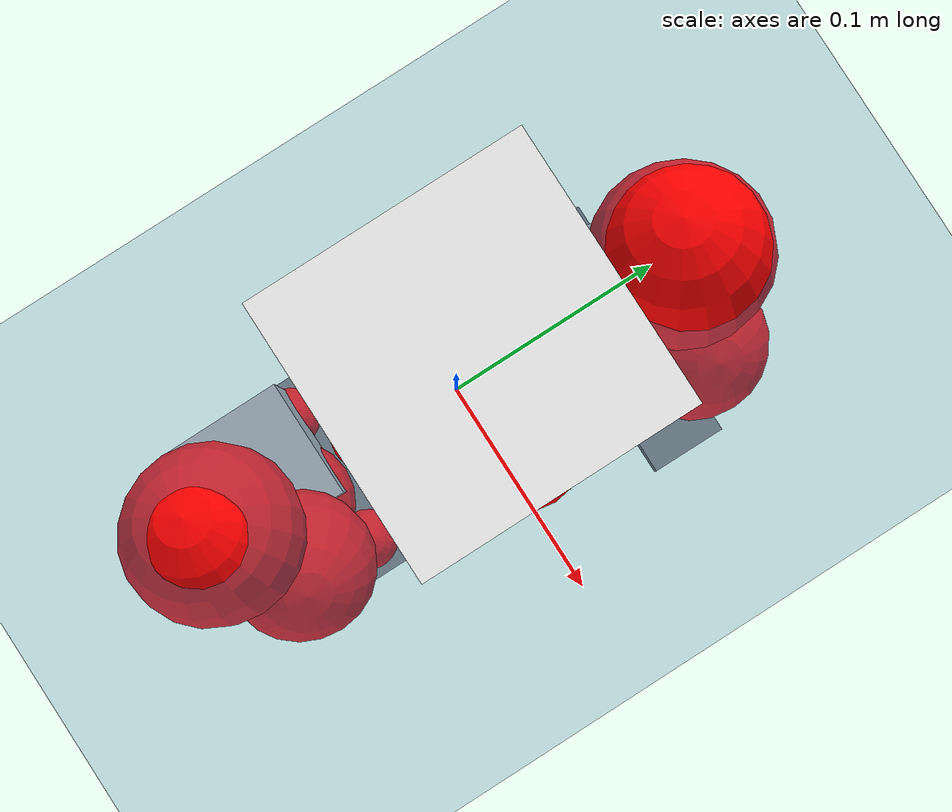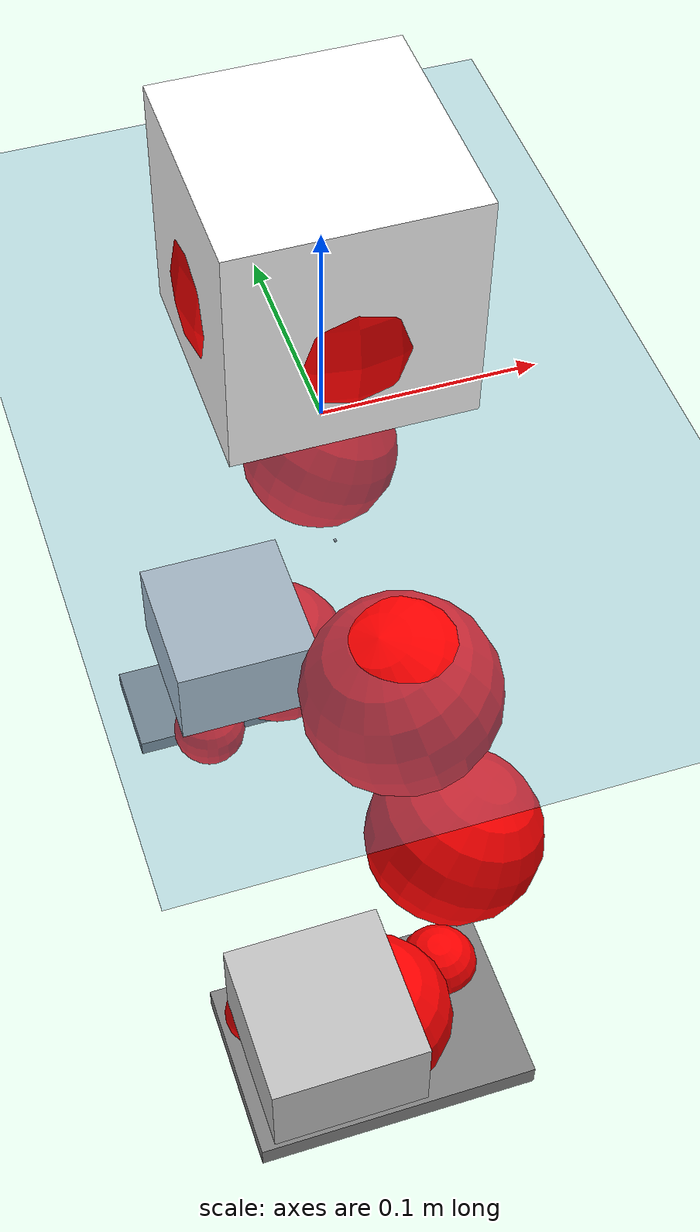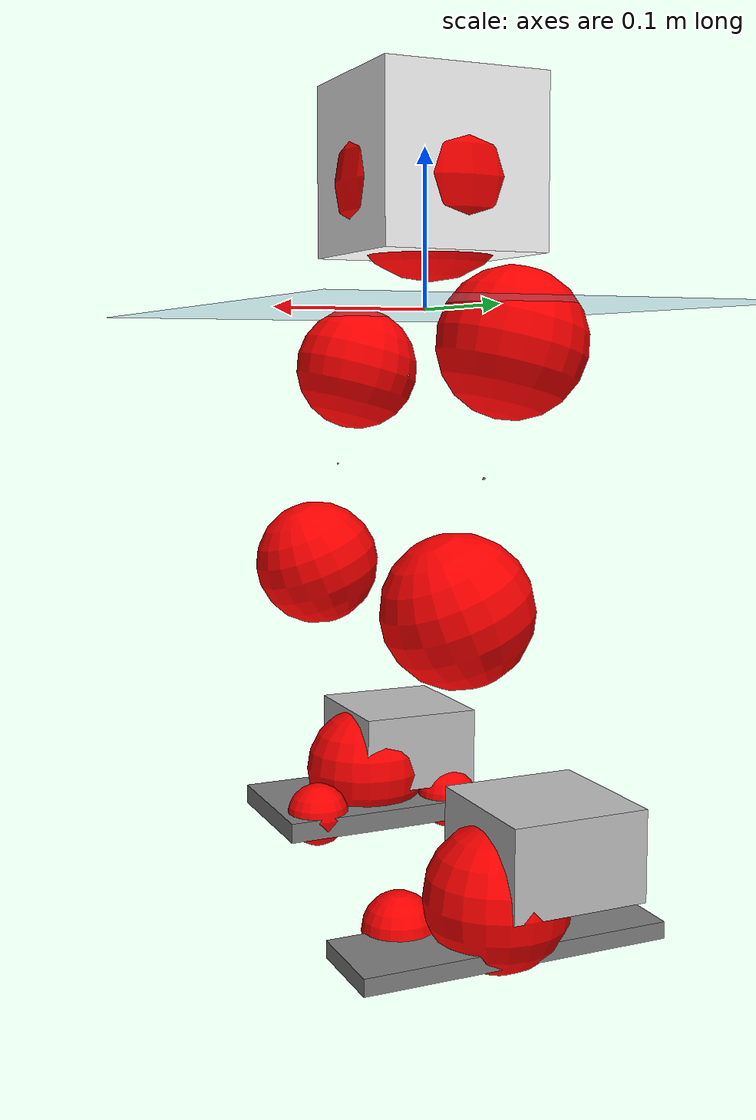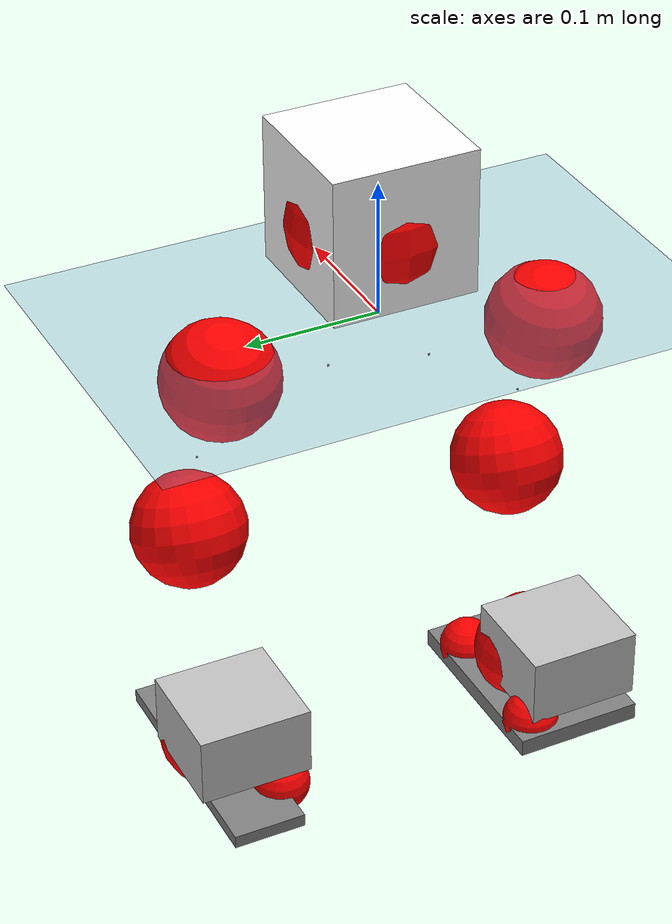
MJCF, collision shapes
<mujoco model="pi_12dof_release_v1">
  <compiler angle="radian" assetdir="assets" balanceinertia="true" inertiafromgeom="false"/>

  <option timestep="0.005" density="1.2" viscosity="2e-05"/>

  <size nkey="1"/>

  <visual>
    <quality shadowsize="8192"/>
    <map shadowclip="0.5"/>
  </visual>

  <default>
    <default class="/">
      <joint armature="0.01" damping="0.01" frictionloss="0.01"/>
      <geom contype="0" conaffinity="0" group="1" solref="-1000 -80"/>
      <site size="0.01 0.005 0.005" group="5"/>
      <general forcelimited="true" biastype="affine" gainprm="20" biasprm="0 -20 -0.5"/>
      <default class="foot">
        <geom size="0.0845 0.036 0.005" type="box" condim="6" group="4" priority="1" friction="0.9 0.2 0.2" solimp="0.015 1 0.005"/>
      </default>
      <default class="reward_collision_sphere">
        <geom group="5" rgba="1 0 0 1"/>
      </default>
    </default>
  </default>

  <asset>
    <texture type="skybox" colorspace="auto" name="//unnamed_texture_0" builtin="gradient" rgb1="0.95 0.95 0.95" rgb2="0.95 0.95 0.95" width="100" height="600"/>
    <texture type="2d" colorspace="auto" name="texplane" builtin="checker" rgb1="0.345 0.575 0.748" rgb2="0.345 0.575 0.748" markrgb="1 1 1" width="512" height="512"/>
    <material name="MatPlane" class="/" texture="texplane" texuniform="true" texrepeat="2 2" specular="0.9"/>
    <mesh name="baselink_1" class="/" file="baselink_1.STL"/>
    <mesh name="r_hip_pitch_link" class="/" file="r_hip_pitch_link.STL"/>
    <mesh name="r_hip_roll_link" class="/" file="r_hip_roll_link.STL"/>
    <mesh name="r_thigh_link" class="/" file="r_thigh_link.STL"/>
    <mesh name="r_calf_link" class="/" file="r_calf_link.STL"/>
    <mesh name="r_ankle_pitch_link" class="/" file="r_ankle_pitch_link.STL"/>
    <mesh name="r_ankle_roll_link" class="/" file="r_ankle_roll_link.STL"/>
    <mesh name="l_hip_pitch_link" class="/" file="l_hip_pitch_link.STL"/>
    <mesh name="l_hip_roll_link" class="/" file="l_hip_roll_link.STL"/>
    <mesh name="l_thigh_link" class="/" file="l_thigh_link.STL"/>
    <mesh name="l_calf_link" class="/" file="l_calf_link.STL"/>
    <mesh name="l_ankle_pitch_link" class="/" file="l_ankle_pitch_link.STL"/>
    <mesh name="l_ankle_roll_link" class="/" file="l_ankle_roll_link.STL"/>
  </asset>

  <worldbody>
    <geom name="floor" class="/" size="100 100 0.125" type="plane" group="0" material="MatPlane"/>
    <light name="toplight_shadow" class="/" pos="0 0 5" dir="0.0990148 0.0990148 -0.990148" type="directional" ambient="0.04 0.04 0.04" diffuse="0.55 0.55 0.55" specular="0.12 0.12 0.12"/>
    <light name="toplight_fill" class="/" pos="0 0 5" dir="0.0990148 0.0990148 -0.990148" type="directional" castshadow="false" ambient="0.04 0.04 0.04" diffuse="0.3 0.3 0.3" specular="0.08 0.08 0.08"/>
    <body name="trunk" pos="-0.00048294 0.00617486 0.00183606" quat="1 6.73818e-05 -0.000112004 4.04637e-05">
      <inertial pos="0.00152615 0.00677622 0.0425572" quat="0.677387 0.0292744 -0.03472 0.734224" mass="2.73385" diaginertia="0.00233395 0.0524841 0.00557533"/>
      <joint name="//unnamed_joint_0" type="free"/>
      <geom name="//unnamed_geom_1" class="/" type="mesh" density="0" rgba="1 1 1 1" mesh="baselink_1"/>
      <geom name="//unnamed_geom_2" class="/" size="0.0537296 0.0537296 0.0537296" pos="0 0 0.0847468" type="box" rgba="1 1 1 1"/>
      <geom name="//unnamed_geom_3" class="reward_collision_sphere" size="0.0591025" pos="0 0 0.0741534"/>
      <site name="imu" class="/" pos="-0.0292367 -0.0177744 0.0307984" size="0.0107459"/>
      <camera name="track" class="/" pos="0 -2.83759 0" quat="0.707107 0.707107 0 0" mode="trackcom"/>
      <camera name="ego_camera" class="/" pos="0.0559234 0 0.19068" quat="-0.5 -0.5 0.5 0.5"/>
      <body name="r_hip_pitch_link" pos="-0.00476672 -0.0433304 -0.0433121" quat="0.991806 -0.000586585 -0.127751 0.00104341">
        <inertial pos="0.000100843 -0.080013 -0.00296414" quat="-0.0224307 0.711265 -0.0254943 0.702104" mass="0.483838" diaginertia="2.49262e-05 0.000614458 0.000108202"/>
        <joint name="r_hip_pitch_joint" class="/" pos="0 0 0" axis="0.00651732 -0.999971 0.0039791" stiffness="0.00449019" range="-1.74013 1.31632" armature="0.0115591" damping="0.0175862" frictionloss="0.0106197"/>
        <geom name="//unnamed_geom_4" class="/" type="mesh" density="0" rgba="0.75294 0.75294 0.75294 1" mesh="r_hip_pitch_link"/>
        <geom name="//unnamed_geom_5" class="/" size="0.000537296 0.000537296 0.000537296" type="box" rgba="0.75294 0.75294 0.75294 1"/>
        <body name="r_hip_roll_link" pos="-8.91997e-05 -0.0909343 0.00442914" quat="0.999997 -0.000614891 -0.0021856 -0.00132918">
          <inertial pos="-0.00649985 -0.00359926 -0.067823" quat="0.712193 -0.0814819 -0.0455065 0.695752" mass="0.481971" diaginertia="8.06161e-05 0.001627 0.000176362"/>
          <joint name="r_hip_roll_joint" class="/" pos="0 0 0" axis="-0.999734 -0.0226457 0.00426441" stiffness="0.0158191" range="-0.148612 0.359429" armature="0.0134814" damping="0.0713496" frictionloss="0.00971781"/>
          <geom name="//unnamed_geom_6" class="/" type="mesh" density="0" rgba="0.75294 0.75294 0.75294 1" mesh="r_hip_roll_link"/>
          <geom name="//unnamed_geom_7" class="/" size="0.000537296 0.000537296 0.000537296" type="box" rgba="0.75294 0.75294 0.75294 1"/>
          <geom name="//unnamed_geom_8" class="reward_collision_sphere" size="0.0429836"/>
          <body name="r_thigh_link" pos="0.00049883 0.00865454 -0.069376" quat="0.999999 -0.000196285 0.00133395 0.000783449">
            <inertial pos="-0.00445574 0.00208374 -0.040494" quat="0.738193 0.674587 0.00102282 -0.00121922" mass="0.138086" diaginertia="3.11784e-05 0.000485634 8.70318e-05"/>
            <joint name="r_thigh_joint" class="/" pos="0 0 0" axis="-0.00782566 -0.0139783 -0.999872" stiffness="0.0181218" range="-0.198634 0.581129" armature="0.0118529" damping="0.0102506" frictionloss="0.011351"/>
            <geom name="//unnamed_geom_9" class="/" type="mesh" density="0" rgba="0.75294 0.75294 0.75294 1" mesh="r_thigh_link"/>
            <geom name="//unnamed_geom_10" class="/" size="0.000537296 0.000537296 0.000537296" type="box" rgba="0.75294 0.75294 0.75294 1"/>
            <body name="r_calf_link" pos="-0.00256166 -0.00120358 -0.0711903" quat="0.947709 -0.000128657 0.319137 0.000128962">
              <inertial pos="0.000853396 -0.00104561 -0.0735365" quat="0.999958 0.00123025 -0.00830276 0.00358498" mass="1.13248" diaginertia="0.00083547 0.023348 0.000218859"/>
              <joint name="r_calf_joint" class="/" pos="0 0 0" axis="-0.0171154 -0.999846 -0.00375087" stiffness="0.0134478" range="-1.86253 0.586992" armature="0.0107153" damping="0.00541133" frictionloss="0.00926241"/>
              <geom name="//unnamed_geom_11" class="/" type="mesh" density="0" rgba="0.75294 0.75294 0.75294 1" mesh="r_calf_link"/>
              <geom name="//unnamed_geom_12" class="/" size="0.000537296 0.000537296 0.000537296" type="box" rgba="0.75294 0.75294 0.75294 1"/>
              <geom name="//unnamed_geom_13" class="reward_collision_sphere" size="0.0429836"/>
              <body name="r_ankle_pitch_link" pos="-0.00903574 -0.0101226 -0.152512" quat="0.979952 -0.000834004 -0.199228 0.00094889">
                <inertial pos="0.00619422 0.0151071 -0.00239792" quat="-0.000304246 0.720355 -0.00747347 0.693566" mass="0.186082" diaginertia="6.62532e-05 0.0011568 0.00014851"/>
                <joint name="r_ankle_pitch_joint" class="/" pos="0 0 0" axis="-0.028382 -0.99899 -0.0348476" range="-1.34962 0.324993" armature="0.0116519" damping="0" frictionloss="0.011406"/>
                <geom name="//unnamed_geom_14" class="/" type="mesh" density="0" rgba="0.75294 0.75294 0.75294 1" mesh="r_ankle_pitch_link"/>
                <geom name="//unnamed_geom_15" class="/" size="0.0419091 0.0429836 0.0268648" type="box" rgba="0.75294 0.75294 0.75294 1"/>
                <body name="r_ankle_roll_link" pos="0.0654386 0.00671722 0.00463133" quat="0.999993 -0.00209718 0.0029953 -0.000816848">
                  <inertial pos="-0.0190231 0.00138695 -0.0203431" quat="0.562378 0.414274 0.446336 0.559367" mass="0.657171" diaginertia="0.000262026 0.00591549 0.000374238"/>
                  <joint name="r_ankle_roll_joint" class="/" pos="0 0 0" axis="-0.99999 -0.00141562 0.00417103" range="0.0428823 0.175719" armature="0.0111828" damping="0.00145749" frictionloss="0.0123254"/>
                  <geom name="//unnamed_geom_16" class="/" type="mesh" density="0" rgba="0.75294 0.75294 0.75294 1" mesh="r_ankle_roll_link"/>
                  <geom name="//unnamed_geom_17" class="/" type="mesh" rgba="0.75294 0.75294 0.75294 1" mesh="r_ankle_roll_link"/>
                  <geom name="right_foot" class="foot" size="0.0758334 0.0487762 0.00672429" pos="-0.0380279 0 -0.0466107"/>
                  <geom name="//unnamed_geom_19" class="reward_collision_sphere" size="0.0429836" pos="-0.0372823 0 -0.0211867"/>
                  <geom name="//unnamed_geom_20" class="reward_collision_sphere" size="0.0214918" pos="0.0111847 0.0283759 -0.0423734"/>
                  <geom name="//unnamed_geom_21" class="reward_collision_sphere" size="0.0214918" pos="-0.0894775 0.0283759 -0.0423734"/>
                  <site name="right_foot" class="foot" pos="-0.0380279 0 -0.0466107" size="0.0107459"/>
                </body>
              </body>
            </body>
          </body>
        </body>
      </body>
      <body name="l_hip_pitch_link" pos="0.00123278 0.0322057 -0.0343607" quat="0.992241 -0.000103494 -0.124331 0.000272076">
        <inertial pos="0.00176175 0.0840554 -0.00351537" quat="-0.0380037 0.704735 0.0299831 0.707817" mass="0.470456" diaginertia="2.89055e-05 0.000587999 0.000130047"/>
        <joint name="l_hip_pitch_joint" class="/" pos="0 0 0" axis="-0.0016831 0.999996 0.00217338" range="-1.23033 1.7367" armature="0.00998848" damping="0.0368341" frictionloss="0.00816421"/>
        <geom name="//unnamed_geom_22" class="/" type="mesh" density="0" rgba="0.75294 0.75294 0.75294 1" mesh="l_hip_pitch_link"/>
        <geom name="//unnamed_geom_23" class="/" size="0.000537296 0.000537296 0.000537296" type="box" rgba="0.75294 0.75294 0.75294 1"/>
        <body name="l_hip_roll_link" pos="0.00412793 0.080175 0.00938763" quat="1 3.54618e-06 1.48868e-06 2.5825e-06">
          <inertial pos="0.00324949 -0.00153094 -0.0553354" quat="0.704092 -0.0913891 -0.0733822 0.70037" mass="0.412041" diaginertia="7.55312e-05 0.00153439 0.000164826"/>
          <joint name="l_hip_roll_joint" class="/" pos="0 0 0" axis="-0.999473 0.00957151 -0.031032" stiffness="0.00645911" range="-0.321171 0.105488" armature="0.00710756" damping="0.0105992" frictionloss="0.0100521"/>
          <geom name="//unnamed_geom_24" class="/" type="mesh" density="0" rgba="0.75294 0.75294 0.75294 1" mesh="l_hip_roll_link"/>
          <geom name="//unnamed_geom_25" class="/" size="0.000537296 0.000537296 0.000537296" type="box" rgba="0.75294 0.75294 0.75294 1"/>
          <geom name="//unnamed_geom_26" class="reward_collision_sphere" size="0.0429836"/>
          <body name="l_thigh_link" pos="0.00376962 0.0104094 -0.0769315" quat="1 2.81497e-06 -1.68318e-06 1.95517e-05">
            <inertial pos="-0.000509061 -0.00303078 -0.0522769" quat="0.681201 0.732077 0.00371085 0.00369889" mass="0.126124" diaginertia="2.47646e-05 0.000504916 7.30309e-05"/>
            <joint name="l_thigh_joint" class="/" pos="0 0 0" axis="-0.000462588 -0.00176256 -0.999998" range="-0.575841 0.295825" armature="0.0130064" damping="0" frictionloss="0.0109066"/>
            <geom name="//unnamed_geom_27" class="/" type="mesh" density="0" rgba="0.75294 0.75294 0.75294 1" mesh="l_thigh_link"/>
            <geom name="//unnamed_geom_28" class="/" size="0.000537296 0.000537296 0.000537296" type="box" rgba="0.75294 0.75294 0.75294 1"/>
            <body name="l_calf_link" pos="-0.00150534 0.00150852 -0.0735092" quat="0.947424 0.00248625 0.319961 -0.00269455">
              <inertial pos="0.000189756 -0.0018397 -0.0692705" quat="0.999988 0.00289959 0.000744478 0.00380005" mass="0.986408" diaginertia="0.000717845 0.0188974 0.000198355"/>
              <joint name="l_calf_joint" class="/" pos="0 0 0" axis="-0.0170907 0.99974 -0.0150929" stiffness="0.00465714" range="-0.641087 1.68527" armature="0.0106533" damping="0.00697788" frictionloss="0.0102054"/>
              <geom name="//unnamed_geom_29" class="/" type="mesh" density="0" rgba="0.75294 0.75294 0.75294 1" mesh="l_calf_link"/>
              <geom name="//unnamed_geom_30" class="/" size="0.000537296 0.000537296 0.000537296" type="box" rgba="0.75294 0.75294 0.75294 1"/>
              <geom name="//unnamed_geom_31" class="reward_collision_sphere" size="0.0429836"/>
              <body name="l_ankle_pitch_link" pos="0.00196329 -0.0051125 -0.150833" quat="0.979346 -0.00189249 -0.202182 -7.94867e-05">
                <inertial pos="0.00389539 0.00712965 -0.00382689" quat="-0.000213713 0.707473 0.00435749 0.706727" mass="0.234361" diaginertia="7.61128e-05 0.00136676 0.000168286"/>
                <joint name="l_ankle_pitch_joint" class="/" pos="0 0 0" axis="0.0026775 0.9999 -0.0139214" stiffness="0.0046095" range="-0.378989 1.21671" armature="0.0116947" damping="0.00841461" frictionloss="0.0109113"/>
                <geom name="//unnamed_geom_32" class="/" type="mesh" density="0" rgba="0.75294 0.75294 0.75294 1" mesh="l_ankle_pitch_link"/>
                <geom name="//unnamed_geom_33" class="/" size="0.0419091 0.0429836 0.0268648" type="box" rgba="0.75294 0.75294 0.75294 1"/>
                <body name="l_ankle_roll_link" pos="0.067101 0.000953607 -0.00523235" quat="0.999999 -0.00120889 5.67432e-05 -3.23415e-05">
                  <inertial pos="-0.0285453 0.000255751 -0.015094" quat="0.557883 0.429335 0.440445 0.557178" mass="0.63794" diaginertia="0.000236976 0.00604572 0.000387369"/>
                  <joint name="l_ankle_roll_joint" class="/" pos="0 0 0" axis="-0.998751 -0.00631255 0.0495673" stiffness="0.00834624" range="-0.350736 0.269698" armature="0.00639676" damping="0" frictionloss="0.0146978"/>
                  <geom name="//unnamed_geom_34" class="/" type="mesh" density="0" rgba="0.75294 0.75294 0.75294 1" mesh="l_ankle_roll_link"/>
                  <geom name="//unnamed_geom_35" class="/" type="mesh" rgba="0.75294 0.75294 0.75294 1" mesh="l_ankle_roll_link"/>
                  <geom name="left_foot" class="foot" size="0.0936832 0.0275479 0.00497763" pos="-0.0380279 0 -0.0466107"/>
                  <geom name="//unnamed_geom_37" class="reward_collision_sphere" size="0.0429836" pos="-0.0372823 0 -0.0211867"/>
                  <geom name="//unnamed_geom_38" class="reward_collision_sphere" size="0.0214918" pos="0.0111847 -0.0283759 -0.0423734"/>
                  <geom name="//unnamed_geom_39" class="reward_collision_sphere" size="0.0214918" pos="-0.0894775 -0.0283759 -0.0423734"/>
                  <site name="left_foot" class="foot" pos="-0.0380279 0 -0.0466107" size="0.0107459"/>
                </body>
              </body>
            </body>
          </body>
        </body>
      </body>
    </body>
  </worldbody>

  <contact>
    <pair class="/" geom1="floor" geom2="right_foot" name="//unnamed_contact_1"/>
    <pair class="/" geom1="floor" geom2="left_foot" name="//unnamed_contact_0"/>
  </contact>

  <actuator>
    <general name="r_hip_pitch_joint" class="/" joint="r_hip_pitch_joint" forcerange="-22.6072 22.6072" gainprm="23.5752" biasprm="0 -23.5752 -0.558206"/>
    <general name="r_hip_roll_joint" class="/" joint="r_hip_roll_joint" forcerange="-22.4234 22.4234" gainprm="23.5752" biasprm="0 -23.5752 -0.558206"/>
    <general name="r_thigh_joint" class="/" joint="r_thigh_joint" forcerange="-18.478 18.478" gainprm="23.5752" biasprm="0 -23.5752 -0.558206"/>
    <general name="r_calf_joint" class="/" joint="r_calf_joint" forcerange="-29.171 29.171" gainprm="23.5752" biasprm="0 -23.5752 -0.558206"/>
    <general name="r_ankle_pitch_joint" class="/" joint="r_ankle_pitch_joint" forcerange="-15.0928 15.0928" gainprm="23.5752" biasprm="0 -23.5752 -0.558206"/>
    <general name="r_ankle_roll_joint" class="/" joint="r_ankle_roll_joint" forcerange="-15.0176 15.0176" gainprm="23.5752" biasprm="0 -23.5752 -0.558206"/>
    <general name="l_hip_pitch_joint" class="/" joint="l_hip_pitch_joint" forcerange="-13.6841 13.6841" gainprm="23.5752" biasprm="0 -23.5752 -0.558206"/>
    <general name="l_hip_roll_joint" class="/" joint="l_hip_roll_joint" forcerange="-26.6801 26.6801" gainprm="23.5752" biasprm="0 -23.5752 -0.558206"/>
    <general name="l_thigh_joint" class="/" joint="l_thigh_joint" forcerange="-22.946 22.946" gainprm="23.5752" biasprm="0 -23.5752 -0.558206"/>
    <general name="l_calf_joint" class="/" joint="l_calf_joint" forcerange="-15.0762 15.0762" gainprm="23.5752" biasprm="0 -23.5752 -0.558206"/>
    <general name="l_ankle_pitch_joint" class="/" joint="l_ankle_pitch_joint" forcerange="-15.0456 15.0456" gainprm="23.5752" biasprm="0 -23.5752 -0.558206"/>
    <general name="l_ankle_roll_joint" class="/" joint="l_ankle_roll_joint" forcerange="-18.6133 18.6133" gainprm="23.5752" biasprm="0 -23.5752 -0.558206"/>
  </actuator>

  <sensor>
    <gyro site="imu" name="imu_angular_velocity"/>
    <velocimeter site="imu" name="imu_linear_velocity"/>
    <framelinvel objtype="site" objname="left_foot" name="left_foot_global_linear_velocity"/>
    <framelinvel objtype="site" objname="right_foot" name="right_foot_global_linear_velocity"/>
  </sensor>

  <keyframe>
    <key name="home" qpos="0 0 0.291 1 0 0 0 0.4 0 0 -0.8 0.4 0 -0.4 0 0 0.8 -0.4 0"/>
  </keyframe>
</mujoco>
